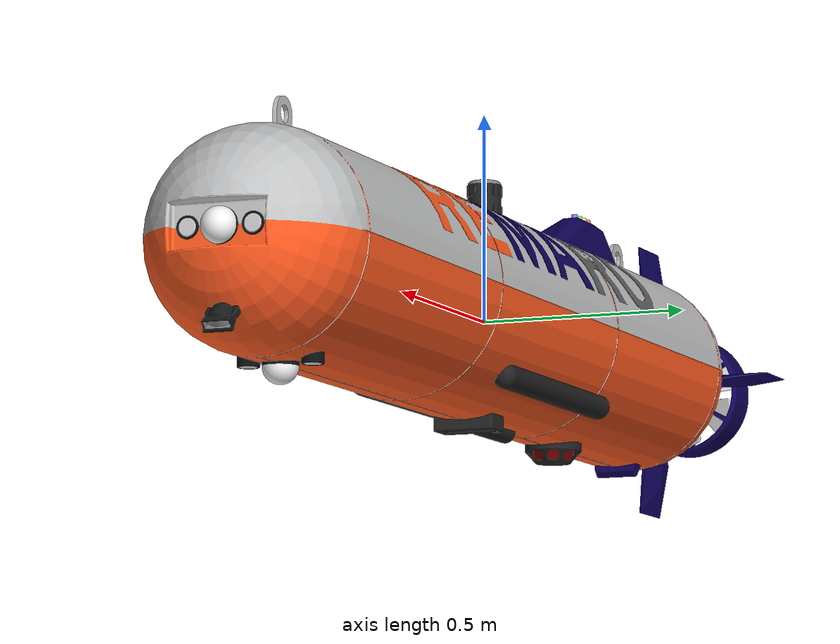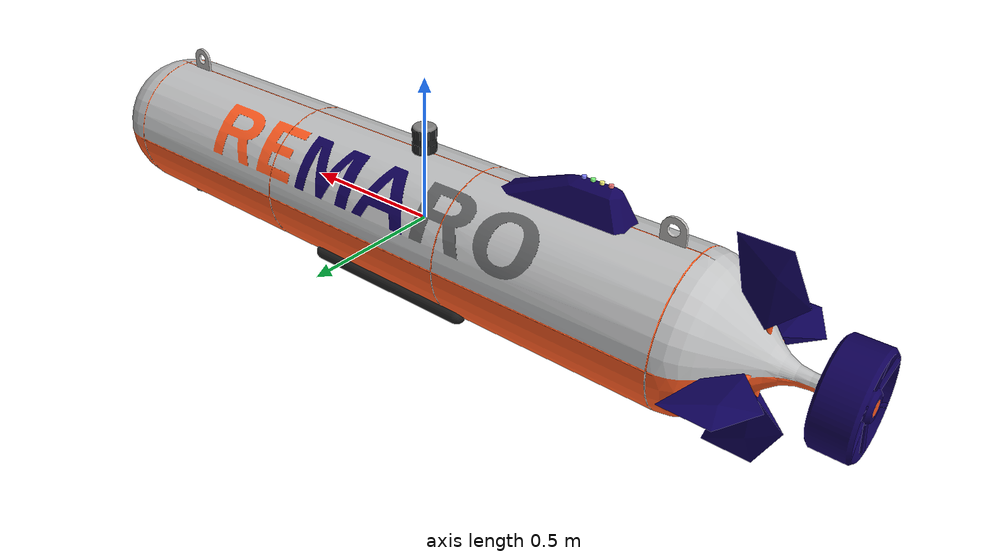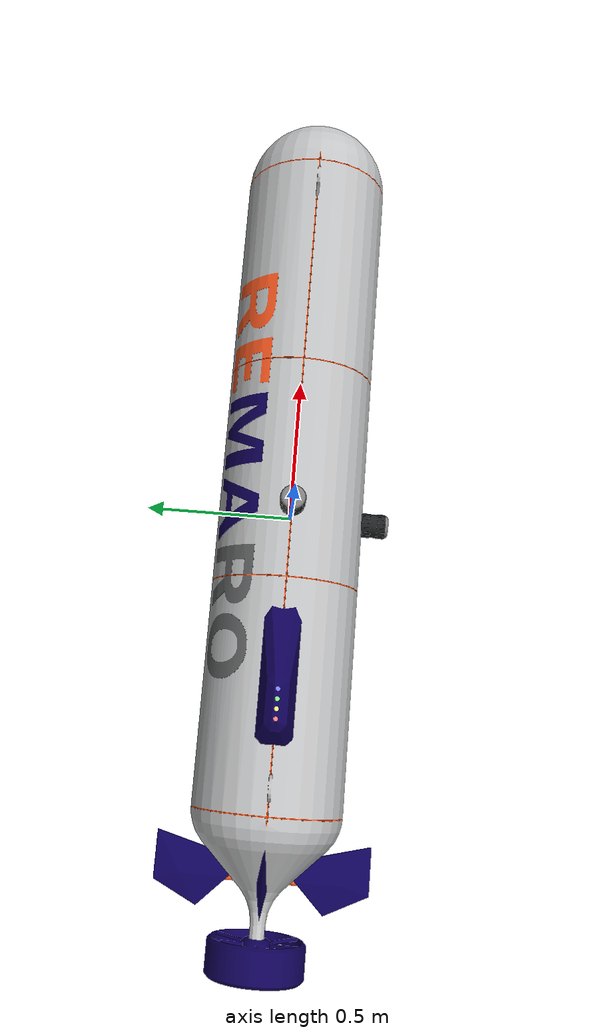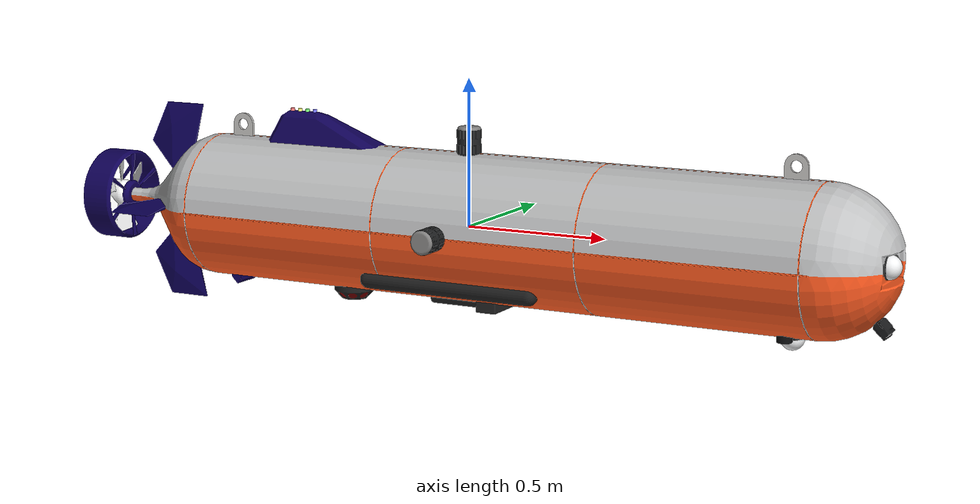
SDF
<?xml version='1.0'?>

<sdf version="1.4">
  <model name="auv">
    <pose>0 0 0 0 0 0</pose>
    <static>true</static>

    <link name="base">
      <visual name="visual">
        <geometry>
            <mesh><uri>model://auv/meshes/base.dae</uri></mesh>
        </geometry>
      </visual>
      <collision name="collision">
        <pose>0 0 0 0 1.5708 0</pose>
        <geometry>
          <cylinder>
            <radius>0.375</radius>
            <length>3.000</length>
          </cylinder>
        </geometry>
      </collision>
      <inertial>    <!-- todo -->
        <mass>1</mass>
        <inertia>
          <ixx>1</ixx>
          <ixy>1</ixy>
          <ixz>1</ixz>
          <iyy>1</iyy>
          <iyz>1</iyz>
          <izz>1</izz>
        </inertia>
      </inertial>
    </link>

    <link name="prop">
      <visual name="visual">
        <pose>-1.440 0 0 0 0 0</pose>
        <geometry>
            <mesh><uri>model://auv/meshes/prop.dae</uri></mesh>
        </geometry>
      </visual>
    </link>
    <joint type="revolute" name="joint_prop">
      <pose>-1.440 0 0 0 0 1.5708</pose>
      <child>prop</child>
      <parent>base</parent>
      <axis>
        <xyz>1 0 0</xyz>
      </axis>
    </joint>

    <link name="fins_vertical">
      <visual name="visual">
        <pose>-1.200 0 0 0 0 3.14159</pose>
        <geometry>
            <mesh><uri>model://auv/meshes/fin_pair.dae</uri></mesh>
        </geometry>
      </visual>
    </link>
    <joint type="revolute" name="joint_fins_vertical">
      <pose>-1.200 0 0 0 0 0</pose>
      <child>fins_vertical</child>
      <parent>base</parent>
      <axis>
        <xyz>0 0 1</xyz>
      </axis>
      <limit>
        <lower>-0.1</lower>
        <upper>0.1</upper>
      </limit>
    </joint>

    <link name="fins_horizontal">
      <visual name="visual">
        <pose>-1.200 0 0 1.5708 0 3.14159</pose>
        <geometry>
            <mesh><uri>model://auv/meshes/fin_pair.dae</uri></mesh>
        </geometry>
      </visual>
    </link>
    <joint type="revolute" name="joint_fins_horizontal">
      <pose>-1.200 0 0 0 0 0</pose>
      <child>fins_horizontal</child>
      <parent>base</parent>
      <axis>
        <xyz>0 1 0</xyz>
      </axis>
      <limit>
        <lower>-0.1</lower>
        <upper>0.1</upper>
      </limit>
    </joint>

    <link name="cam_front">
      <visual name="visual">
        <pose>1.45 0 0 0 0 0</pose>
        <geometry>
            <mesh><uri>model://auv/meshes/cam.dae</uri></mesh>
        </geometry>
      </visual>
    </link>
    <joint type="fixed" name="joint_cam_front">
      <child>cam_front</child>
      <parent>base</parent>
    </joint>

    <link name="cam_bottom">
      <visual name="visual">
        <pose>1.15 0 -0.25 0 1.5708 0</pose>
        <geometry>
            <mesh><uri>model://auv/meshes/cam.dae</uri></mesh>
        </geometry>
      </visual>
    </link>
    <joint type="fixed" name="joint_cam_bottom">
      <child>cam_bottom</child>
      <parent>base</parent>
    </joint>

    <link name="lights_front">
      <visual name="visual">
        <pose>1.45 0 0 0 0 3.14159</pose>
        <geometry>
            <mesh><uri>model://auv/meshes/light_pair.dae</uri></mesh>
        </geometry>
      </visual>
    </link>
    <joint type="fixed" name="joint_lights_front">
      <child>lights_front</child>
      <parent>base</parent>
    </joint>

    <link name="lights_bottom">
      <visual name="visual">
        <pose>1.15 0 -0.25 0 -1.5708 0</pose>
        <geometry>
            <mesh><uri>model://auv/meshes/light_pair.dae</uri></mesh>
        </geometry>
      </visual>
    </link>
    <joint type="fixed" name="joint_lights_bottom">
      <child>lights_bottom</child>
      <parent>base</parent>
    </joint>

    <link name="scanner_top">
      <visual name="visual">
        <pose>0 0 0.25 0 0 0</pose>
        <geometry>
            <mesh><uri>model://auv/meshes/scanner.dae</uri></mesh>
        </geometry>
      </visual>
    </link>
    <joint type="fixed" name="joint_scanner_top">
      <child>scanner_top</child>
      <parent>base</parent>
    </joint>

    <link name="scanner_side">
      <visual name="visual">
        <pose>0 -0.25 0 1.5708 0 0</pose>
        <geometry>
            <mesh><uri>model://auv/meshes/scanner.dae</uri></mesh>
        </geometry>
      </visual>
    </link>
    <joint type="fixed" name="joint_scanner_side">
      <child>scanner_side</child>
      <parent>base</parent>
    </joint>

    <link name="sss_starboard">
      <visual name="visual">
        <pose>0 -0.1767767 -0.1767767 -0.7854 0 0</pose>
        <geometry>
            <mesh><uri>model://auv/meshes/sss.dae</uri></mesh>
        </geometry>
      </visual>
    </link>
    <joint type="fixed" name="joint_sss_starboard">
      <child>sss_starboard</child>
      <parent>base</parent>
    </joint>

    <link name="sss_port">
      <visual name="visual">
        <pose>0 0.1767767 -0.1767767 0.7854 0 0</pose>
        <geometry>
            <mesh><uri>model://auv/meshes/sss.dae</uri></mesh>
        </geometry>
      </visual>
    </link>
    <joint type="fixed" name="joint_sss_port">
      <child>sss_port</child>
      <parent>base</parent>
    </joint>

    <link name="fls">
      <visual name="visual">
        <pose>1.4267767 0 -0.1767767 0 3.927 0</pose>
        <geometry>
            <mesh><uri>model://auv/meshes/fls.dae</uri></mesh>
        </geometry>
      </visual>
    </link>
    <joint type="fixed" name="joint_fls">
      <child>fls</child>
      <parent>base</parent>
    </joint>

    <link name="mbes">
      <visual name="visual">
        <pose>0 0 -0.25 0 0 0</pose>
        <geometry>
            <mesh><uri>model://auv/meshes/mbes.dae</uri></mesh>
        </geometry>
      </visual>
    </link>
    <joint type="fixed" name="joint_mbes">
      <child>mbes</child>
      <parent>base</parent>
    </joint>

    <link name="dvl">
      <visual name="visual">
        <pose>-0.45 0 -0.25 0 0 0</pose>
        <geometry>
            <mesh><uri>model://auv/meshes/dvl.dae</uri></mesh>
        </geometry>
      </visual>
    </link>
    <joint type="fixed" name="joint_dvl">
      <child>dvl</child>
      <parent>base</parent>
    </joint>

    <link name="laser">
      <visual name="visual">
        <pose>-0.9 0 -0.25 0 0 0</pose>
        <geometry>
            <mesh><uri>model://auv/meshes/laser.dae</uri></mesh>
        </geometry>
      </visual>
    </link>
    <joint type="fixed" name="joint_laser">
      <child>laser</child>
      <parent>base</parent>
    </joint>

  </model>
</sdf>
